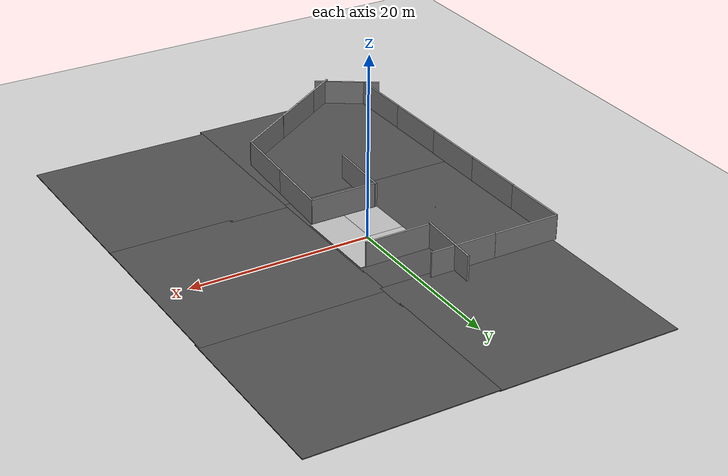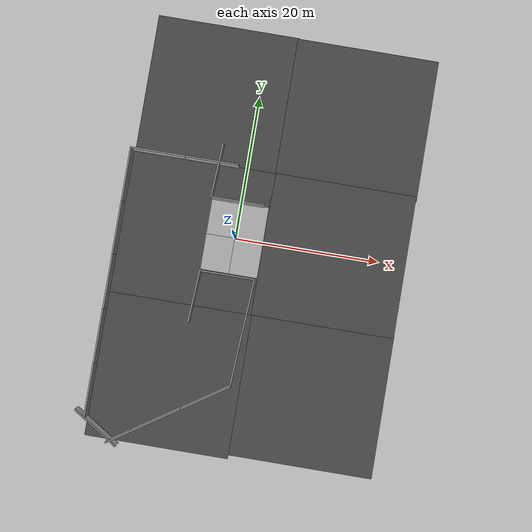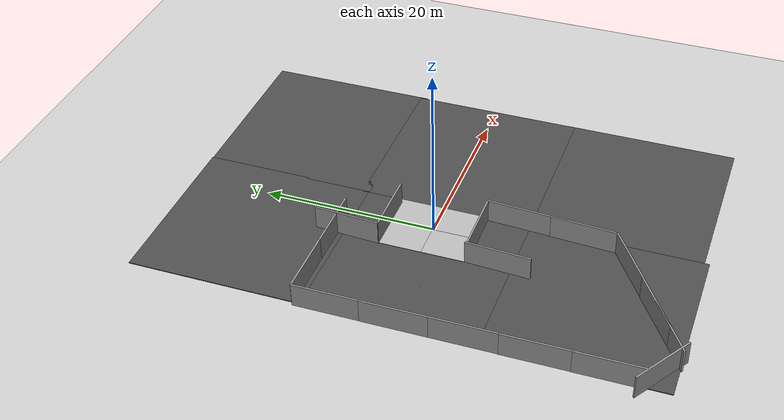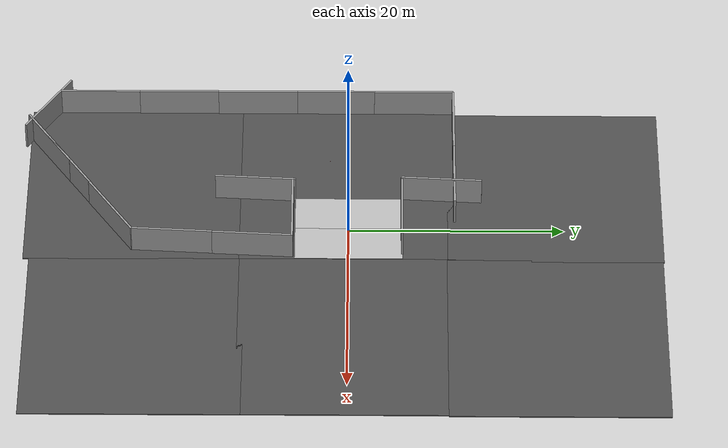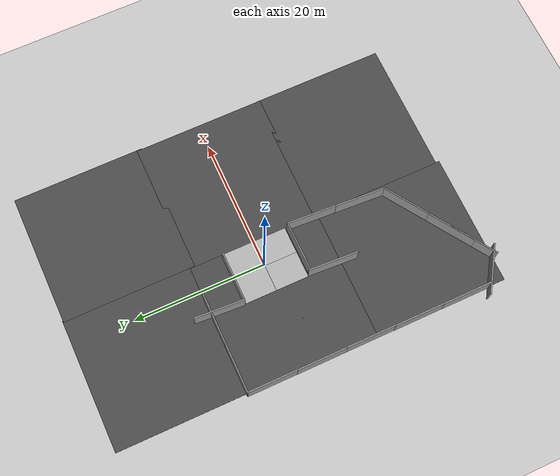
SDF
<sdf version="1.6">
 <world name="default">
  <model name="ground_plane">
   <static>1</static>
   <link name="link">
    <collision name="collision">
     <geometry><plane><normal>0 0 1</normal><size>100 100</size></plane></geometry>
     <surface><friction><ode><mu>100</mu><mu2>50</mu2></ode></friction></surface>
    </collision>
    <visual name="visual">
     <cast_shadows>0</cast_shadows>
     <geometry><plane><normal>0 0 1</normal><size>100 100</size></plane></geometry>
     <material>
      <script><uri>file://media/materials/scripts/gazebo.material</uri><name>Gazebo/Grey</name></script>
     </material>
    </visual>
   </link>
  </model>
  <gravity>0 0 -9.8</gravity>
  <magnetic_field>6e-06 2.3e-05 -4.2e-05</magnetic_field>
  <atmosphere type="adiabatic"/>
  <physics name="default_physics" default="0" type="ode">
   <max_step_size>0.001</max_step_size>
   <real_time_factor>1</real_time_factor>
   <real_time_update_rate>1000</real_time_update_rate>
  </physics>
  <scene><ambient>0.4 0.4 0.4 1</ambient><background>0.7 0.7 0.7 1</background><shadows>1</shadows></scene>
  <spherical_coordinates>
   <surface_model>EARTH_WGS84</surface_model>
   <latitude_deg>0</latitude_deg>
   <longitude_deg>0</longitude_deg>
   <elevation>0</elevation>
   <heading_deg>0</heading_deg>
  </spherical_coordinates>
  <model name="asphalt_plane">
   <static>1</static>
   <link name="link">
    <collision name="collision"><geometry><box><size>20 20 0.1</size></box></geometry></collision>
    <visual name="visual">
     <cast_shadows>0</cast_shadows>
     <geometry><box><size>20 20 0.1</size></box></geometry>
     <material>
      <script>
       <uri>model://asphalt_plane/materials/scripts</uri>
       <uri>model://asphalt_plane/materials/textures</uri>
       <name>vrc/asphalt</name>
      </script>
     </material>
    </visual>
   </link>
   <pose>-6.04244 -0.116572 0 0 -0 0</pose>
  </model>
  <model name="mud_box">
   <static>1</static>
   <link name="link">
    <collision name="collision"><geometry><box><size>8 10 0.2</size></box></geometry></collision>
    <visual name="visual_1">
     <pose>-2 2.5 0 0 -0 0</pose>
     <cast_shadows>0</cast_shadows>
     <geometry><box><size>4 5 0.2</size></box></geometry>
     <material>
      <script>
       <uri>model://mud_box/materials/scripts</uri>
       <uri>model://mud_box/materials/textures</uri>
       <name>vrc/mud</name>
      </script>
     </material>
    </visual>
    <visual name="visual_2">
     <pose>2 2.5 0 0 -0 0</pose>
     <cast_shadows>0</cast_shadows>
     <geometry><box><size>4 5 0.2</size></box></geometry>
     <material>
      <script>
       <uri>model://mud_box/materials/scripts</uri>
       <uri>model://mud_box/materials/textures</uri>
       <name>vrc/mud</name>
      </script>
     </material>
    </visual>
    <visual name="visual_3">
     <pose>2 -2.5 0 0 -0 0</pose>
     <cast_shadows>0</cast_shadows>
     <geometry><box><size>4 5 0.2</size></box></geometry>
     <material>
      <script>
       <uri>model://mud_box/materials/scripts</uri>
       <uri>model://mud_box/materials/textures</uri>
       <name>vrc/mud</name>
      </script>
     </material>
    </visual>
    <visual name="visual_4">
     <pose>-2 -2.5 0 0 -0 0</pose>
     <cast_shadows>0</cast_shadows>
     <geometry><box><size>4 5 0.2</size></box></geometry>
     <material>
      <script>
       <uri>model://mud_box/materials/scripts</uri>
       <uri>model://mud_box/materials/textures</uri>
       <name>vrc/mud</name>
      </script>
     </material>
    </visual>
   </link>
   <pose>-0.203311 0.031126 0 0 -0 0</pose>
  </model>
  <model name="asphalt_plane_clone">
   <static>1</static>
   <link name="link">
    <collision name="collision"><geometry><box><size>20 20 0.1</size></box></geometry></collision>
    <visual name="visual">
     <cast_shadows>0</cast_shadows>
     <geometry><box><size>20 20 0.1</size></box></geometry>
     <material>
      <script>
       <uri>model://asphalt_plane/materials/scripts</uri>
       <uri>model://asphalt_plane/materials/textures</uri>
       <name>vrc/asphalt</name>
      </script>
     </material>
    </visual>
   </link>
   <pose>13.8083 -0.075006 0 0 -0 0</pose>
  </model>
  <model name="grey_wall">
   <static>1</static>
   <link name="link">
    <pose>0 0 1.4 0 -0 0</pose>
    <collision name="collision"><geometry><box><size>7.5 0.2 2.8</size></box></geometry></collision>
    <visual name="visual">
     <cast_shadows>0</cast_shadows>
     <geometry><box><size>7.5 0.2 2.8</size></box></geometry>
     <material>
      <script>
       <uri>model://grey_wall/materials/scripts</uri>
       <uri>model://grey_wall/materials/textures</uri>
       <name>vrc/grey_wall</name>
      </script>
     </material>
    </visual>
   </link>
   <pose>-4.27191 -8.6952 0 0 0 -1.62595</pose>
  </model>
  <model name="grey_wall_clone">
   <static>1</static>
   <link name="link">
    <pose>0 0 1.4 0 -0 0</pose>
    <collision name="collision"><geometry><box><size>7.5 0.2 2.8</size></box></geometry></collision>
    <visual name="visual">
     <cast_shadows>0</cast_shadows>
     <geometry><box><size>7.5 0.2 2.8</size></box></geometry>
     <material>
      <script>
       <uri>model://grey_wall/materials/scripts</uri>
       <uri>model://grey_wall/materials/textures</uri>
       <name>vrc/grey_wall</name>
      </script>
     </material>
    </visual>
   </link>
   <pose>-4.03529 8.66003 0.11803 0 0 -1.62595</pose>
  </model>
  <model name="grey_wall_clone_0">
   <static>1</static>
   <link name="link">
    <pose>0 0 1.4 0 -0 0</pose>
    <collision name="collision"><geometry><box><size>7.5 0.2 2.8</size></box></geometry></collision>
    <visual name="visual">
     <cast_shadows>0</cast_shadows>
     <geometry><box><size>7.5 0.2 2.8</size></box></geometry>
     <material>
      <script>
       <uri>model://grey_wall/materials/scripts</uri>
       <uri>model://grey_wall/materials/textures</uri>
       <name>vrc/grey_wall</name>
      </script>
     </material>
    </visual>
   </link>
   <pose>-16.1962 6.13034 0 0 0 -1.56712</pose>
  </model>
  <model name="grey_wall_clone_1">
   <static>1</static>
   <link name="link">
    <pose>0 0 1.4 0 -0 0</pose>
    <collision name="collision"><geometry><box><size>7.5 0.2 2.8</size></box></geometry></collision>
    <visual name="visual">
     <cast_shadows>0</cast_shadows>
     <geometry><box><size>7.5 0.2 2.8</size></box></geometry>
     <material>
      <script>
       <uri>model://grey_wall/materials/scripts</uri>
       <uri>model://grey_wall/materials/textures</uri>
       <name>vrc/grey_wall</name>
      </script>
     </material>
    </visual>
   </link>
   <pose>-12.4554 9.86247 0 0 0 -3.1395</pose>
  </model>
  <model name="grey_wall_clone_1_clone">
   <static>1</static>
   <link name="link">
    <pose>0 0 1.4 0 -0 0</pose>
    <collision name="collision"><geometry><box><size>7.5 0.2 2.8</size></box></geometry></collision>
    <visual name="visual">
     <cast_shadows>0</cast_shadows>
     <geometry><box><size>7.5 0.2 2.8</size></box></geometry>
     <material>
      <script>
       <uri>model://grey_wall/materials/scripts</uri>
       <uri>model://grey_wall/materials/textures</uri>
       <name>vrc/grey_wall</name>
      </script>
     </material>
    </visual>
   </link>
   <pose>-4.96236 9.86992 0 0 0 -3.1395</pose>
  </model>
  <model name="asphalt_plane_clone_clone">
   <static>1</static>
   <link name="link">
    <collision name="collision"><geometry><box><size>20 20 0.1</size></box></geometry></collision>
    <visual name="visual">
     <cast_shadows>0</cast_shadows>
     <geometry><box><size>20 20 0.1</size></box></geometry>
     <material>
      <script>
       <uri>model://asphalt_plane/materials/scripts</uri>
       <uri>model://asphalt_plane/materials/textures</uri>
       <name>vrc/asphalt</name>
      </script>
     </material>
    </visual>
   </link>
   <pose>-6.08735 -20.1076 0 0 -0 0</pose>
  </model>
  <model name="grey_wall_clone_1_clone_clone">
   <static>1</static>
   <link name="link">
    <pose>0 0 1.4 0 -0 0</pose>
    <collision name="collision"><geometry><box><size>7.5 0.2 2.8</size></box></geometry></collision>
    <visual name="visual">
     <cast_shadows>0</cast_shadows>
     <geometry><box><size>7.5 0.2 2.8</size></box></geometry>
     <material>
      <script>
       <uri>model://grey_wall/materials/scripts</uri>
       <uri>model://grey_wall/materials/textures</uri>
       <name>vrc/grey_wall</name>
      </script>
     </material>
    </visual>
   </link>
   <pose>-0.227053 -5.20463 0 0 0 -3.1395</pose>
  </model>
  <model name="grey_wall_clone_2">
   <static>1</static>
   <link name="link">
    <pose>0 0 1.4 0 -0 0</pose>
    <collision name="collision"><geometry><box><size>7.5 0.2 2.8</size></box></geometry></collision>
    <visual name="visual">
     <cast_shadows>0</cast_shadows>
     <geometry><box><size>7.5 0.2 2.8</size></box></geometry>
     <material>
      <script>
       <uri>model://grey_wall/materials/scripts</uri>
       <uri>model://grey_wall/materials/textures</uri>
       <name>vrc/grey_wall</name>
      </script>
     </material>
    </visual>
   </link>
   <pose>3.24949 -8.8541 0 0 0 -1.62595</pose>
  </model>
  <model name="grey_wall_clone_3">
   <static>1</static>
   <link name="link">
    <pose>0 0 1.4 0 -0 0</pose>
    <collision name="collision"><geometry><box><size>7.5 0.2 2.8</size></box></geometry></collision>
    <visual name="visual">
     <cast_shadows>0</cast_shadows>
     <geometry><box><size>7.5 0.2 2.8</size></box></geometry>
     <material>
      <script>
       <uri>model://grey_wall/materials/scripts</uri>
       <uri>model://grey_wall/materials/textures</uri>
       <name>vrc/grey_wall</name>
      </script>
     </material>
    </visual>
   </link>
   <pose>2.80383 -16.293 0 0 0 -1.62595</pose>
  </model>
  <model name="grey_wall_clone_0_clone">
   <static>1</static>
   <link name="link">
    <pose>0 0 1.4 0 -0 0</pose>
    <collision name="collision"><geometry><box><size>7.5 0.2 2.8</size></box></geometry></collision>
    <visual name="visual">
     <cast_shadows>0</cast_shadows>
     <geometry><box><size>7.5 0.2 2.8</size></box></geometry>
     <material>
      <script>
       <uri>model://grey_wall/materials/scripts</uri>
       <uri>model://grey_wall/materials/textures</uri>
       <name>vrc/grey_wall</name>
      </script>
     </material>
    </visual>
   </link>
   <pose>-16.1916 -1.31149 0 0 0 -1.56712</pose>
  </model>
  <model name="grey_wall_clone_0_clone_0">
   <static>1</static>
   <link name="link">
    <pose>0 0 1.4 0 -0 0</pose>
    <collision name="collision"><geometry><box><size>7.5 0.2 2.8</size></box></geometry></collision>
    <visual name="visual">
     <cast_shadows>0</cast_shadows>
     <geometry><box><size>7.5 0.2 2.8</size></box></geometry>
     <material>
      <script>
       <uri>model://grey_wall/materials/scripts</uri>
       <uri>model://grey_wall/materials/textures</uri>
       <name>vrc/grey_wall</name>
      </script>
     </material>
    </visual>
   </link>
   <pose>-16.1576 -8.68332 0 0 0 -1.56712</pose>
  </model>
  <model name="grey_wall_clone_0_clone_1">
   <static>1</static>
   <link name="link">
    <pose>0 0 1.4 0 -0 0</pose>
    <collision name="collision"><geometry><box><size>7.5 0.2 2.8</size></box></geometry></collision>
    <visual name="visual">
     <cast_shadows>0</cast_shadows>
     <geometry><box><size>7.5 0.2 2.8</size></box></geometry>
     <material>
      <script>
       <uri>model://grey_wall/materials/scripts</uri>
       <uri>model://grey_wall/materials/textures</uri>
       <name>vrc/grey_wall</name>
      </script>
     </material>
    </visual>
   </link>
   <pose>-16.1672 -16.1762 0 0 0 -1.56712</pose>
  </model>
  <model name="grey_wall_clone_0_clone_2">
   <static>1</static>
   <link name="link">
    <pose>0 0 1.4 0 -0 0</pose>
    <collision name="collision"><geometry><box><size>7.5 0.2 2.8</size></box></geometry></collision>
    <visual name="visual">
     <cast_shadows>0</cast_shadows>
     <geometry><box><size>7.5 0.2 2.8</size></box></geometry>
     <material>
      <script>
       <uri>model://grey_wall/materials/scripts</uri>
       <uri>model://grey_wall/materials/textures</uri>
       <name>vrc/grey_wall</name>
      </script>
     </material>
    </visual>
   </link>
   <pose>-16.1635 -23.6485 0 0 0 -1.56712</pose>
  </model>
  <model name="grey_wall_clone_0_clone_3">
   <static>1</static>
   <link name="link">
    <pose>0 0 1.4 0 -0 0</pose>
    <collision name="collision"><geometry><box><size>7.5 0.2 2.8</size></box></geometry></collision>
    <visual name="visual">
     <cast_shadows>0</cast_shadows>
     <geometry><box><size>7.5 0.2 2.8</size></box></geometry>
     <material>
      <script>
       <uri>model://grey_wall/materials/scripts</uri>
       <uri>model://grey_wall/materials/textures</uri>
       <name>vrc/grey_wall</name>
      </script>
     </material>
    </visual>
   </link>
   <pose>-14.4681 -28.501 0 0 0 -0.567486</pose>
  </model>
  <model name="grey_wall_clone_0_clone_3_clone">
   <static>1</static>
   <link name="link">
    <pose>0 0 1.4 0 -0 0</pose>
    <collision name="collision"><geometry><box><size>7.5 0.2 2.8</size></box></geometry></collision>
    <visual name="visual">
     <cast_shadows>0</cast_shadows>
     <geometry><box><size>7.5 0.2 2.8</size></box></geometry>
     <material>
      <script>
       <uri>model://grey_wall/materials/scripts</uri>
       <uri>model://grey_wall/materials/textures</uri>
       <name>vrc/grey_wall</name>
      </script>
     </material>
    </visual>
   </link>
   <pose>-0.462032 -22.1043 0 0 -0 0.586165</pose>
  </model>
  <model name="grey_wall_clone_0_clone_3_clone_clone">
   <static>1</static>
   <link name="link">
    <pose>0 0 1.4 0 -0 0</pose>
    <collision name="collision"><geometry><box><size>7.5 0.2 2.8</size></box></geometry></collision>
    <visual name="visual">
     <cast_shadows>0</cast_shadows>
     <geometry><box><size>7.5 0.2 2.8</size></box></geometry>
     <material>
      <script>
       <uri>model://grey_wall/materials/scripts</uri>
       <uri>model://grey_wall/materials/textures</uri>
       <name>vrc/grey_wall</name>
      </script>
     </material>
    </visual>
   </link>
   <pose>-6.64842 -26.1815 0 0 -0 0.586165</pose>
  </model>
  <model name="grey_wall_clone_0_clone_3_clone_clone_0">
   <static>1</static>
   <link name="link">
    <pose>0 0 1.4 0 -0 0</pose>
    <collision name="collision"><geometry><box><size>7.5 0.2 2.8</size></box></geometry></collision>
    <visual name="visual">
     <cast_shadows>0</cast_shadows>
     <geometry><box><size>7.5 0.2 2.8</size></box></geometry>
     <material>
      <script>
       <uri>model://grey_wall/materials/scripts</uri>
       <uri>model://grey_wall/materials/textures</uri>
       <name>vrc/grey_wall</name>
      </script>
     </material>
    </visual>
   </link>
   <pose>-9.64371 -28.1726 0 0 -0 0.586165</pose>
  </model>
  <model name="grey_wall_clone_1_clone_0">
   <static>1</static>
   <link name="link">
    <pose>0 0 1.4 0 -0 0</pose>
    <collision name="collision"><geometry><box><size>7.5 0.2 2.8</size></box></geometry></collision>
    <visual name="visual">
     <cast_shadows>0</cast_shadows>
     <geometry><box><size>7.5 0.2 2.8</size></box></geometry>
     <material>
      <script>
       <uri>model://grey_wall/materials/scripts</uri>
       <uri>model://grey_wall/materials/textures</uri>
       <name>vrc/grey_wall</name>
      </script>
     </material>
    </visual>
   </link>
   <pose>-0.548926 4.97698 0 0 0 -3.1395</pose>
  </model>
  <model name="asphalt_plane_clone_clone_0">
   <static>1</static>
   <link name="link">
    <collision name="collision"><geometry><box><size>20 20 0.1</size></box></geometry></collision>
    <visual name="visual">
     <cast_shadows>0</cast_shadows>
     <geometry><box><size>20 20 0.1</size></box></geometry>
     <material>
      <script>
       <uri>model://asphalt_plane/materials/scripts</uri>
       <uri>model://asphalt_plane/materials/textures</uri>
       <name>vrc/asphalt</name>
      </script>
     </material>
    </visual>
   </link>
   <pose>13.9092 19.1334 0 0 -0 0</pose>
  </model>
  <model name="asphalt_plane_clone_clone_1">
   <static>1</static>
   <link name="link">
    <collision name="collision"><geometry><box><size>20 20 0.1</size></box></geometry></collision>
    <visual name="visual">
     <cast_shadows>0</cast_shadows>
     <geometry><box><size>20 20 0.1</size></box></geometry>
     <material>
      <script>
       <uri>model://asphalt_plane/materials/scripts</uri>
       <uri>model://asphalt_plane/materials/textures</uri>
       <name>vrc/asphalt</name>
      </script>
     </material>
    </visual>
   </link>
   <pose>-5.8775 19.2206 0 0 -0 0</pose>
  </model>
  <model name="asphalt_plane_clone_clone_1_clone">
   <static>1</static>
   <link name="link">
    <collision name="collision"><geometry><box><size>20 20 0.1</size></box></geometry></collision>
    <visual name="visual">
     <cast_shadows>0</cast_shadows>
     <geometry><box><size>20 20 0.1</size></box></geometry>
     <material>
      <script>
       <uri>model://asphalt_plane/materials/scripts</uri>
       <uri>model://asphalt_plane/materials/textures</uri>
       <name>vrc/asphalt</name>
      </script>
     </material>
    </visual>
   </link>
   <pose>13.8319 -19.557 0 0 -0 0</pose>
  </model>
  <light name="user_directional_light_0" type="directional">
   <pose>-0.402661 -7.47415 1 0 -0 0</pose>
   <diffuse>0.5 0.5 0.5 1</diffuse>
   <specular>0.1 0.1 0.1 1</specular>
   <direction>0.1 0.1 -0.9</direction>
   <attenuation>
    <range>20</range>
    <constant>0.5</constant>
    <linear>0.01</linear>
    <quadratic>0.001</quadratic>
   </attenuation>
  </light>
  <model name="cricket_ball">
   <link name="link">
    <pose>0 0 0.0375 0 -0 0</pose>
    <inertial>
     <mass>0.1467</mass>
     <inertia>
      <ixx>8.25187e-05</ixx>
      <ixy>0</ixy>
      <ixz>0</ixz>
      <iyy>8.25187e-05</iyy>
      <iyz>0</iyz>
      <izz>8.25187e-05</izz>
     </inertia>
    </inertial>
    <collision name="collision">
     <geometry><sphere><radius>0.0375</radius></sphere></geometry>
     <surface>
      <contact>
       <poissons_ratio>0.347</poissons_ratio>
       <elastic_modulus>8.8e+09</elastic_modulus>
       <ode><kp>100000</kp><kd>100</kd><max_vel>100</max_vel><min_depth>0.001</min_depth></ode>
      </contact>
      <friction>
       <torsional>
        <coefficient>1</coefficient>
        <use_patch_radius>0</use_patch_radius>
        <surface_radius>0.01</surface_radius>
       </torsional>
      </friction>
     </surface>
    </collision>
    <visual name="visual">
     <geometry><sphere><radius>0.0375</radius></sphere></geometry>
     <material>
      <script><uri>file://media/materials/scripts/gazebo.material</uri><name>Gazebo/Red</name></script>
     </material>
    </visual>
    <velocity_decay><linear>0</linear><angular>0.005</angular></velocity_decay>
   </link>
   <pose>-9.37718 -1.76113 0.04908 0.070326 0.009014 8e-06</pose>
  </model>
 </world>
</sdf>
